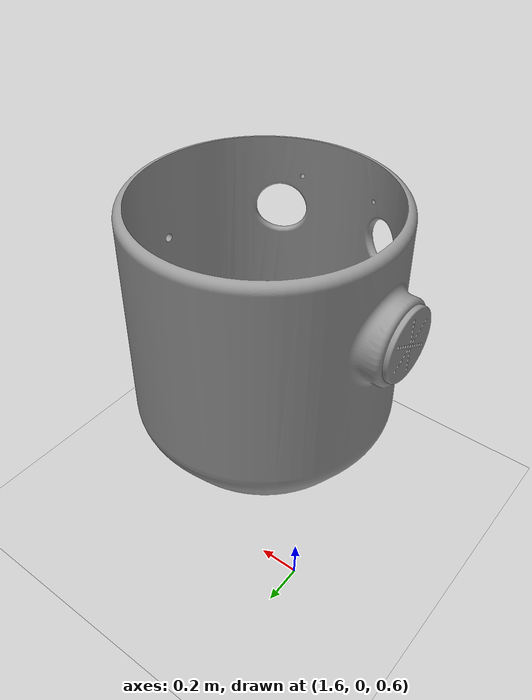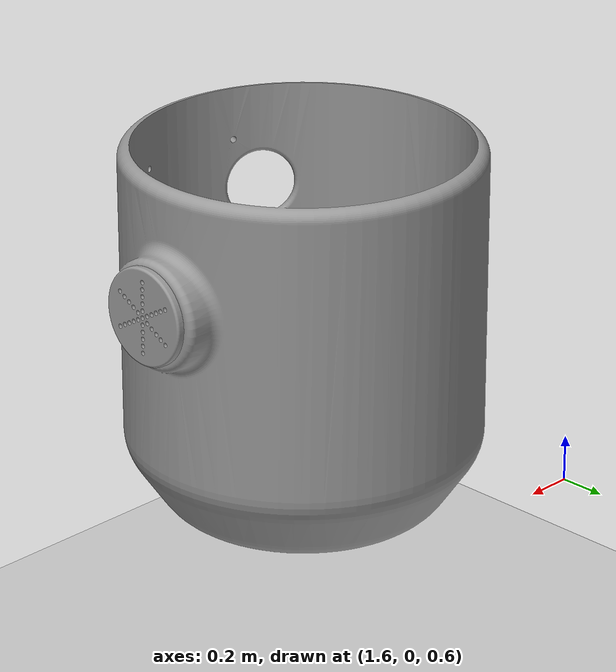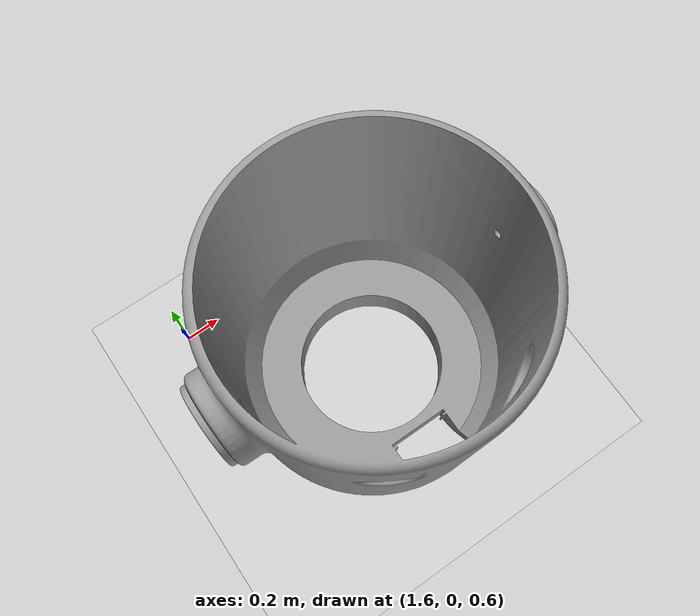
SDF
<sdf version="1.5">
 <world name="default">
  <light name="sun" type="directional">
   <pose>0 0 10 0 -0 0</pose>
   <diffuse>0.8 0.8 0.8 1</diffuse>
   <specular>0.2 0.2 0.2 1</specular>
   <attenuation>
    <range>1000</range>
    <constant>0.9</constant>
    <linear>0.01</linear>
    <quadratic>0.001</quadratic>
   </attenuation>
   <direction>-0.5 0.1 -0.9</direction>
  </light>
  <model name="ground_plane">
   <static>1</static>
   <link name="link">
    <collision name="collision">
     <geometry><plane><normal>0 0 1</normal><size>100 100</size></plane></geometry>
     <surface><friction><ode><mu>100</mu><mu2>50</mu2></ode></friction></surface>
    </collision>
    <visual name="visual">
     <cast_shadows>0</cast_shadows>
     <geometry><plane><normal>0 0 1</normal><size>100 100</size></plane></geometry>
     <material>
      <script><uri>file://media/materials/scripts/gazebo.material</uri><name>Gazebo/Grey</name></script>
     </material>
    </visual>
   </link>
  </model>
  <physics name="default_physics" default="0" type="ode">
   <max_step_size>0.001</max_step_size>
   <real_time_factor>1</real_time_factor>
   <real_time_update_rate>1000</real_time_update_rate>
   <gravity>0 0 -9.8</gravity>
   <magnetic_field>5.5645e-06 2.28758e-05 -4.23884e-05</magnetic_field>
  </physics>
  <scene><ambient>0.4 0.4 0.4 1</ambient><background>0.7 0.7 0.7 1</background><shadows>1</shadows></scene>
  <spherical_coordinates>
   <surface_model>EARTH_WGS84</surface_model>
   <latitude_deg>0</latitude_deg>
   <longitude_deg>0</longitude_deg>
   <elevation>0</elevation>
   <heading_deg>0</heading_deg>
  </spherical_coordinates>
  <model name="HEAD">
   <link name="FACE">
    <pose>1.5371 -1.50745 0.5 0 -0 0</pose>
    <inertial>
     <mass>0.47386924</mass>
     <inertia>
      <ixx>0.00458492</ixx>
      <iyy>0.00475384</iyy>
      <izz>0.00222689</izz>
      <ixy>0</ixy>
      <ixz>0</ixz>
      <iyz>0.00007495</iyz>
     </inertia>
    </inertial>
    <collision name="collision">
     <geometry>
      <box><size>0.17 0.15 0.16</size></box>
      <mesh>
       <uri>/media/trannguyenphuongtrinh_eeit13/01D0512D26AB19B0/ROBOT/retry2/face/Face.STL</uri>
       <scale>0.01 0.01 0.01</scale>
      </mesh>
     </geometry>
    </collision>
    <visual name="custom_-27_visual">
     <geometry>
      <mesh>
       <uri>/media/trannguyenphuongtrinh_eeit13/01D0512D26AB19B0/ROBOT/retry2/face/Face.STL</uri>
       <scale>0.01 0.01 0.01</scale>
      </mesh>
     </geometry>
     <material>
      <script><uri>file://media/materials/scripts/gazebo.material</uri><name>Gazebo/Grey</name></script>
     </material>
    </visual>
   </link>
   <link name="EARcap_right">
    <pose>1.510000 -0.967000 1.425000 1.56 0.000001 1.575000</pose>
    <inertial>
     <mass>0.00532927</mass>
     <inertia>
      <ixx>0.00000069</ixx>
      <iyy>0.00000069</iyy>
      <izz>0.00000127</izz>
      <ixy>0</ixy>
      <ixz>0</ixz>
      <iyz>0</iyz>
     </inertia>
    </inertial>
    <collision name="defaultModel_0::custom_0_collision">
     <geometry>
      <box><size>0.041 0.041 0.008</size></box>
      <mesh>
       <uri>/media/trannguyenphuongtrinh_eeit13/01D0512D26AB19B0/ROBOT/retry2/ear/ear_cap.STL</uri>
       <scale>0.01 0.01 0.01</scale>
      </mesh>
     </geometry>
    </collision>
    <visual name="custom_0_visual">
     <geometry>
      <mesh>
       <uri>/media/trannguyenphuongtrinh_eeit13/01D0512D26AB19B0/ROBOT/retry2/ear/ear_cap.STL</uri>
       <scale>0.01 0.01 0.01</scale>
      </mesh>
     </geometry>
     <material>
      <script><uri>file://media/materials/scripts/gazebo.material</uri><name>Gazebo/Grey</name></script>
     </material>
    </visual>
   </link>
   <link name="EARcap_left">
    <pose>3.277000 -0.555000 1.430000 1.585000 -0.000001 -1.575</pose>
    <inertial>
     <mass>0.00532927</mass>
     <inertia>
      <ixx>0.00000069</ixx>
      <iyy>0.00000069</iyy>
      <izz>0.00000127</izz>
      <ixy>0</ixy>
      <ixz>0</ixz>
      <iyz>0</iyz>
     </inertia>
    </inertial>
    <collision name="defaultModel_0::custom_0_collision">
     <geometry>
      <box><size>0.041 0.041 0.008</size></box>
      <mesh>
       <uri>/media/trannguyenphuongtrinh_eeit13/01D0512D26AB19B0/ROBOT/retry2/ear/ear_cap.STL</uri>
       <scale>0.01 0.01 0.01</scale>
      </mesh>
     </geometry>
    </collision>
    <visual name="custom_0_visual">
     <geometry>
      <mesh>
       <uri>/media/trannguyenphuongtrinh_eeit13/01D0512D26AB19B0/ROBOT/retry2/ear/ear_cap.STL</uri>
       <scale>0.01 0.01 0.01</scale>
      </mesh>
     </geometry>
     <material>
      <script><uri>file://media/materials/scripts/gazebo.material</uri><name>Gazebo/Grey</name></script>
     </material>
    </visual>
   </link>
   <static>1</static>
  </model>
 </world>
</sdf>
